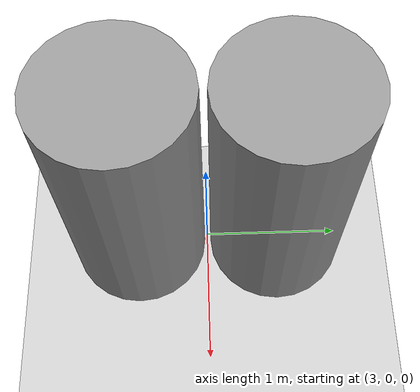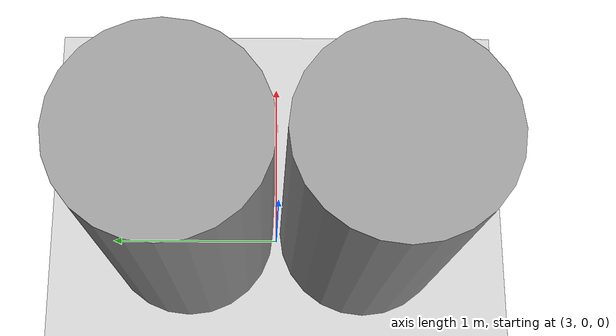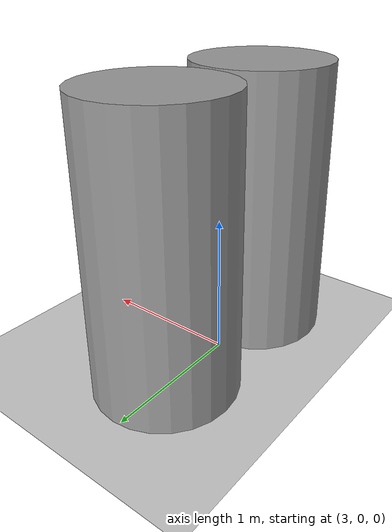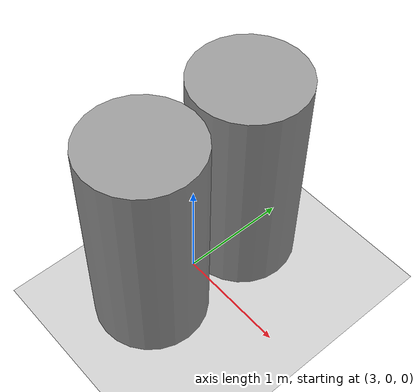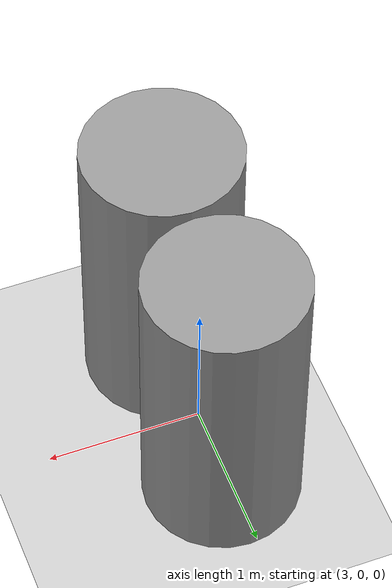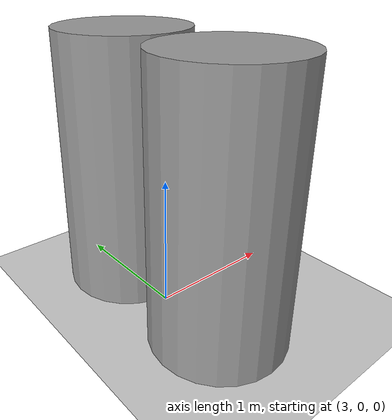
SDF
<sdf version='1.7'>
  <world name='default'>
    <light name='sun' type='directional'>
      <cast_shadows>1</cast_shadows>
      <pose>0 0 10 0 -0 0</pose>
      <diffuse>0.8 0.8 0.8 1</diffuse>
      <specular>0.2 0.2 0.2 1</specular>
      <attenuation>
        <range>1000</range>
        <constant>0.9</constant>
        <linear>0.01</linear>
        <quadratic>0.001</quadratic>
      </attenuation>
      <direction>-0.5 0.1 -0.9</direction>
      <spot>
        <inner_angle>0</inner_angle>
        <outer_angle>0</outer_angle>
        <falloff>0</falloff>
      </spot>
    </light>
    <model name='ground_plane'>
      <static>1</static>
      <link name='link'>
        <collision name='collision'>
          <geometry>
            <plane>
              <normal>0 0 1</normal>
              <size>100 100</size>
            </plane>
          </geometry>
          <surface>
            <contact>
              <collide_bitmask>65535</collide_bitmask>
              <ode/>
            </contact>
            <friction>
              <ode>
                <mu>100</mu>
                <mu2>50</mu2>
              </ode>
              <torsional>
                <ode/>
              </torsional>
            </friction>
            <bounce/>
          </surface>
          <max_contacts>10</max_contacts>
        </collision>
        <visual name='visual'>
          <cast_shadows>0</cast_shadows>
          <geometry>
            <plane>
              <normal>0 0 1</normal>
              <size>100 100</size>
            </plane>
          </geometry>
          <material>
            <script>
              <uri>file://media/materials/scripts/gazebo.material</uri>
              <name>Gazebo/Grey</name>
            </script>
          </material>
        </visual>
        <self_collide>0</self_collide>
        <enable_wind>0</enable_wind>
        <kinematic>0</kinematic>
      </link>
    </model>
    <gravity>0 0 -9.8</gravity>
    <magnetic_field>6e-06 2.3e-05 -4.2e-05</magnetic_field>
    <atmosphere type='adiabatic'/>
    <physics type='ode'>
      <max_step_size>0.001</max_step_size>
      <real_time_factor>1</real_time_factor>
      <real_time_update_rate>1000</real_time_update_rate>
    </physics>
    <scene>
      <ambient>0.4 0.4 0.4 1</ambient>
      <background>0.7 0.7 0.7 1</background>
      <shadows>1</shadows>
    </scene>
    <wind/>
    <spherical_coordinates>
      <surface_model>EARTH_WGS84</surface_model>
      <latitude_deg>0</latitude_deg>
      <longitude_deg>0</longitude_deg>
      <elevation>0</elevation>
      <heading_deg>0</heading_deg>
    </spherical_coordinates>
    <model name='unit_cylinder'>
      <pose>3.04778 -0.522349 1.0 0 -0 0</pose>
      <link name='link'>
        <inertial>
          <mass>1</mass>
          <inertia>
            <ixx>0.145833</ixx>
            <ixy>0</ixy>
            <ixz>0</ixz>
            <iyy>0.145833</iyy>
            <iyz>0</iyz>
            <izz>0.125</izz>
          </inertia>
          <pose>0 0 0 0 -0 0</pose>
        </inertial>
        <collision name='collision'>
          <geometry>
            <cylinder>
              <radius>0.5</radius>
              <length>2</length>
            </cylinder>
          </geometry>
          <max_contacts>10</max_contacts>
          <surface>
            <contact>
              <ode/>
            </contact>
            <bounce/>
            <friction>
              <torsional>
                <ode/>
              </torsional>
              <ode/>
            </friction>
          </surface>
        </collision>
        <visual name='visual'>
          <geometry>
            <cylinder>
              <radius>0.5</radius>
              <length>2</length>
            </cylinder>
          </geometry>
          <material>
            <script>
              <name>Gazebo/Grey</name>
              <uri>file://media/materials/scripts/gazebo.material</uri>
            </script>
          </material>
        </visual>
        <self_collide>0</self_collide>
        <enable_wind>0</enable_wind>
        <kinematic>0</kinematic>
      </link>
    </model>
    <model name='unit_cylinder_2'>
      <pose>3.04778 0.522349 1.0 0 -0 0</pose>
      <link name='link'>
        <inertial>
          <mass>1</mass>
          <inertia>
            <ixx>0.145833</ixx>
            <ixy>0</ixy>
            <ixz>0</ixz>
            <iyy>0.145833</iyy>
            <iyz>0</iyz>
            <izz>0.125</izz>
          </inertia>
          <pose>0 0 0 0 -0 0</pose>
        </inertial>
        <collision name='collision'>
          <geometry>
            <cylinder>
              <radius>0.5</radius>
              <length>2</length>
            </cylinder>
          </geometry>
          <max_contacts>10</max_contacts>
          <surface>
            <contact>
              <ode/>
            </contact>
            <bounce/>
            <friction>
              <torsional>
                <ode/>
              </torsional>
              <ode/>
            </friction>
          </surface>
        </collision>
        <visual name='visual'>
          <geometry>
            <cylinder>
              <radius>0.5</radius>
              <length>2</length>
            </cylinder>
          </geometry>
          <material>
            <script>
              <name>Gazebo/Grey</name>
              <uri>file://media/materials/scripts/gazebo.material</uri>
            </script>
          </material>
        </visual>
        <self_collide>0</self_collide>
        <enable_wind>0</enable_wind>
        <kinematic>0</kinematic>
      </link>
    </model>
    <gui fullscreen='0'>
      <camera name='user_camera'>
        <pose>0.819832 -0.196644 14.8962 -1e-06 1.5698 -0.043808</pose>
        <view_controller>orbit</view_controller>
        <projection_type>perspective</projection_type>
      </camera>
    </gui>
  </world>
</sdf>
